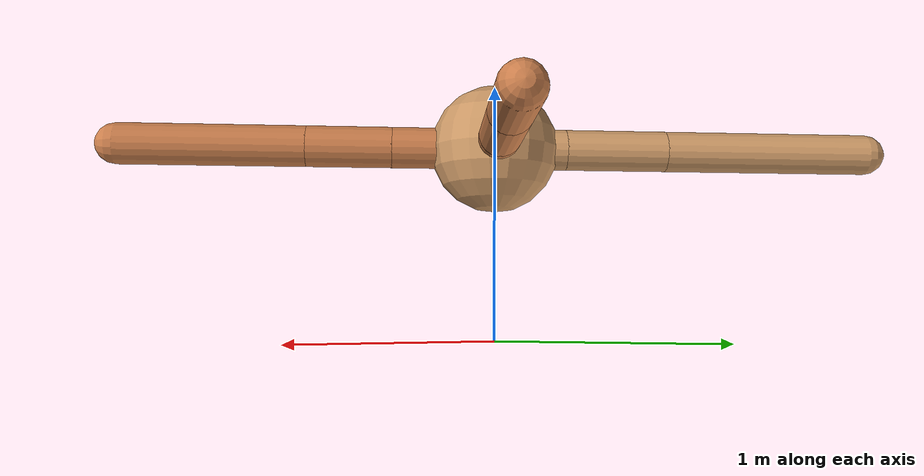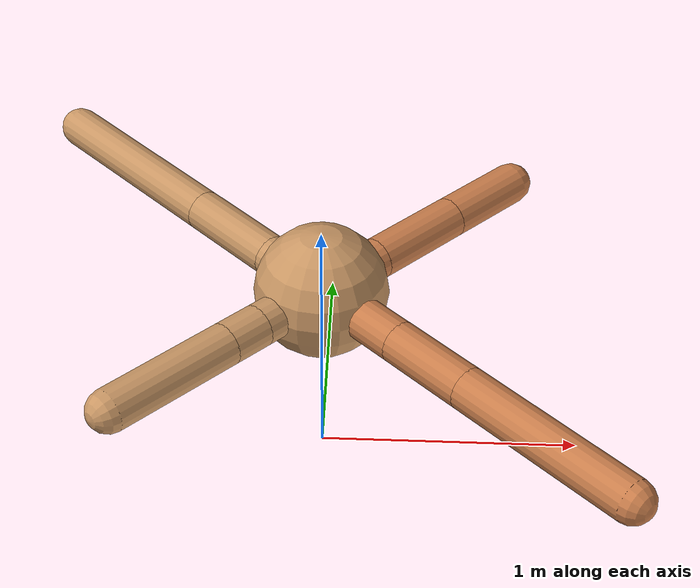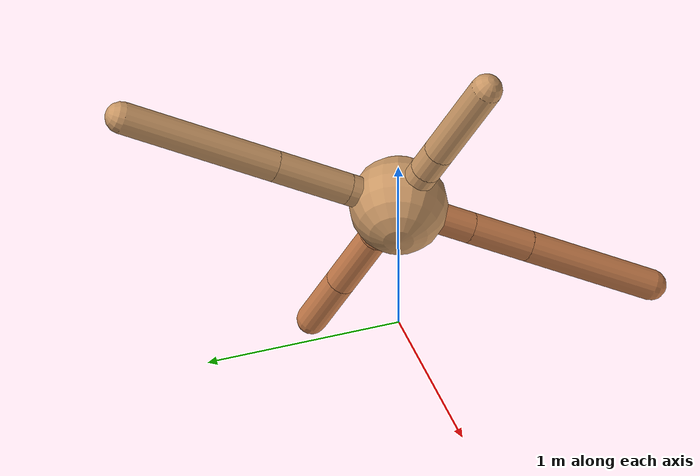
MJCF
<mujoco model="ant">
  <compiler angle="degree" coordinate="local" inertiafromgeom="true" />
  <option integrator="RK4" timestep="0.01" />
  <custom>
    <numeric data="0.0 0.0 0.55 1.0 0.0 0.0 0.0 0.0 1.0 0.0 -1.0 0.0 -1.0 0.0 1.0" name="init_qpos" />
  </custom>
  <default>
    <joint armature="1" damping="1" limited="true" />
    <geom conaffinity="0" condim="3" density="5.0" friction="1.5 0.1 0.1" margin="0.01" rgba="0.8 0.6 0.4 1" />
  </default>
  <worldbody>
    <body name="torso" pos="0 0 0.75">
      <geom name="torso_geom" pos="0 0 0" size="0.25" type="sphere" />

      <body name="front_left_leg" pos="0 0 0">
        <geom fromto="0.0 0.0 0.0 0.2 0.2 0.0" name="aux_1_geom" size="0.08" type="capsule" rgba=".8 .5 .3 1" />
        <body name="aux_1" pos="0.2 0.2 0.0">
          <joint axis="0 0 1" name="hip_1" pos="0.0 0.0 0.0" range="-40 40" type="hinge" />
          <geom fromto="0.0 0.0 0.0 0.27670642187355643 0.27670642187355643 0.0" name="left_leg_geom" size="0.08" type="capsule" rgba=".8 .5 .3 1" />
          <body pos="0.27670642187355643 0.27670642187355643 0.0" name="front_left_foot">
            <joint axis="-1 1 0" name="ankle_1" pos="0.0 0.0 0.0" range="30 100" type="hinge" />
            <geom fromto="0.0 0.0 0.0 0.24814746024573942 0.24814746024573942 0.0" name="left_ankle_geom" size="0.08" type="capsule" rgba=".8 .5 .3 1" />
          </body>
        </body>
      </body>
      <body name="front_right_leg" pos="0 0 0">
        <geom fromto="0.0 0.0 0.0 -0.2 0.2 0.0" name="aux_2_geom" size="0.08" type="capsule" />
        <body name="aux_2" pos="-0.2 0.2 0.0">
          <joint axis="0 0 1" name="hip_2" pos="0.0 0.0 0.0" range="-40 40" type="hinge" />
          <geom fromto="0.0 0.0 0.0 -0.2831840735376319 0.2831840735376319 0.0" name="right_leg_geom" size="0.08" type="capsule" />
          <body pos="-0.2831840735376319 0.2831840735376319 0.0" name="front_right_foot">
            <joint axis="1 1 0" name="ankle_2" pos="0.0 0.0 0.0" range="-100 -30" type="hinge" />
            <geom fromto="0.0 0.0 0.0 -0.5851066582802008 0.5851066582802008 0.0" name="right_ankle_geom" size="0.08" type="capsule" />
          </body>
        </body>
      </body>
      <body name="left_back_leg" pos="0 0 0">
        <geom fromto="0.0 0.0 0.0 -0.21471155522937507 -0.21471155522937507 0.0" name="aux_3_geom" size="0.08" type="capsule" />
        <body name="aux_3" pos="-0.21471155522937507 -0.21471155522937507 0.0">
          <joint axis="0 0 1" name="hip_3" pos="0.0 0.0 0.0" range="-40 40" type="hinge" />
          <geom fromto="0.0 0.0 0.0 -0.10615941177027043 -0.10615941177027043 0.0" name="back_leg_geom" size="0.08" type="capsule" />
          <body pos="-0.10615941177027043 -0.10615941177027043 0.0" name="left_back_foot">
            <joint axis="-1 1 0" name="ankle_3" pos="0.0 0.0 0.0" range="-100 -30" type="hinge" />
            <geom fromto="0.0 0.0 0.0 -0.3613805873705429 -0.3613805873705429 0.0" name="third_ankle_geom" size="0.08" type="capsule" />
          </body>
        </body>
      </body>
      <body name="right_back_leg" pos="0 0 0">
        <geom fromto="0.0 0.0 0.0 0.2842238891235743 -0.2842238891235743 0.0" name="aux_4_geom" size="0.08" type="capsule" rgba=".8 .5 .3 1" />
        <body name="aux_4" pos="0.2842238891235743 -0.2842238891235743 0.0">
          <joint axis="0 0 1" name="hip_4" pos="0.0 0.0 0.0" range="-40 40" type="hinge" />
          <geom fromto="0.0 0.0 0.0 0.2339695555836702 -0.2339695555836702 0.0" name="rightback_leg_geom" size="0.08" type="capsule" rgba=".8 .5 .3 1" />
          <body pos="0.2339695555836702 -0.2339695555836702 0.0" name="right_back_foot">
            <joint axis="1 1 0" name="ankle_4" pos="0.0 0.0 0.0" range="30 100" type="hinge" />
            <geom fromto="0.0 0.0 0.0 0.5059511870058987 -0.5059511870058987 0.0" name="fourth_ankle_geom" size="0.08" type="capsule" rgba=".8 .5 .3 1" />
          </body>
        </body>
      </body>
    </body>
  </worldbody>
  <actuator>
    <motor ctrllimited="true" ctrlrange="-1.0 1.0" joint="hip_4" gear="150" />
    <motor ctrllimited="true" ctrlrange="-1.0 1.0" joint="ankle_4" gear="150" />
    <motor ctrllimited="true" ctrlrange="-1.0 1.0" joint="hip_1" gear="150" />
    <motor ctrllimited="true" ctrlrange="-1.0 1.0" joint="ankle_1" gear="150" />
    <motor ctrllimited="true" ctrlrange="-1.0 1.0" joint="hip_2" gear="150" />
    <motor ctrllimited="true" ctrlrange="-1.0 1.0" joint="ankle_2" gear="150" />
    <motor ctrllimited="true" ctrlrange="-1.0 1.0" joint="hip_3" gear="150" />
    <motor ctrllimited="true" ctrlrange="-1.0 1.0" joint="ankle_3" gear="150" />
  </actuator>
</mujoco>
